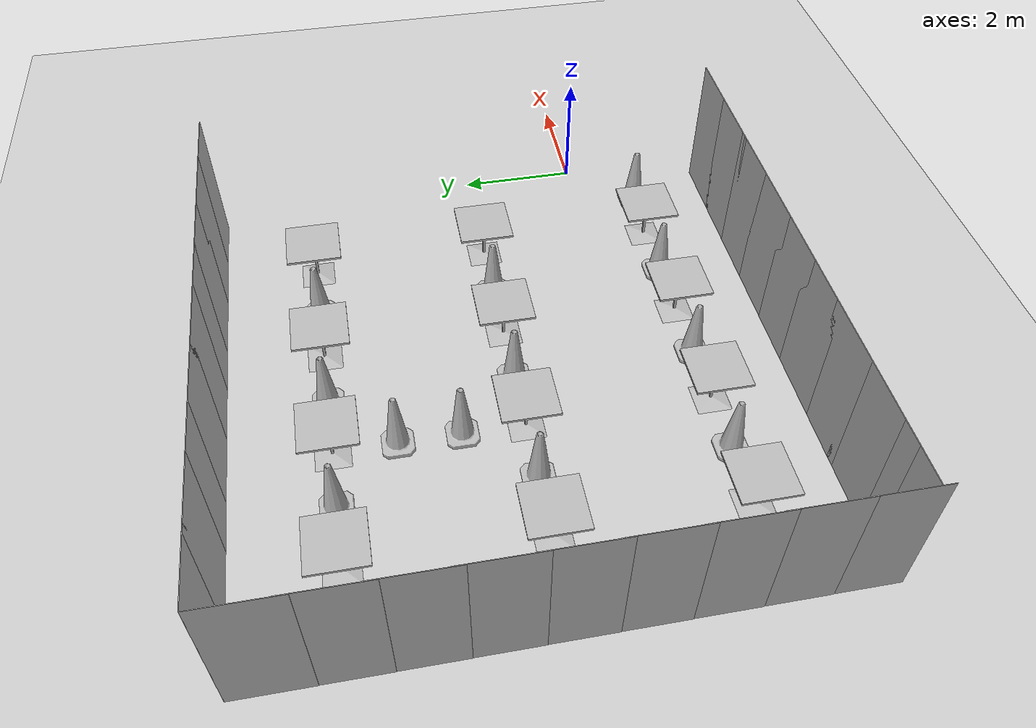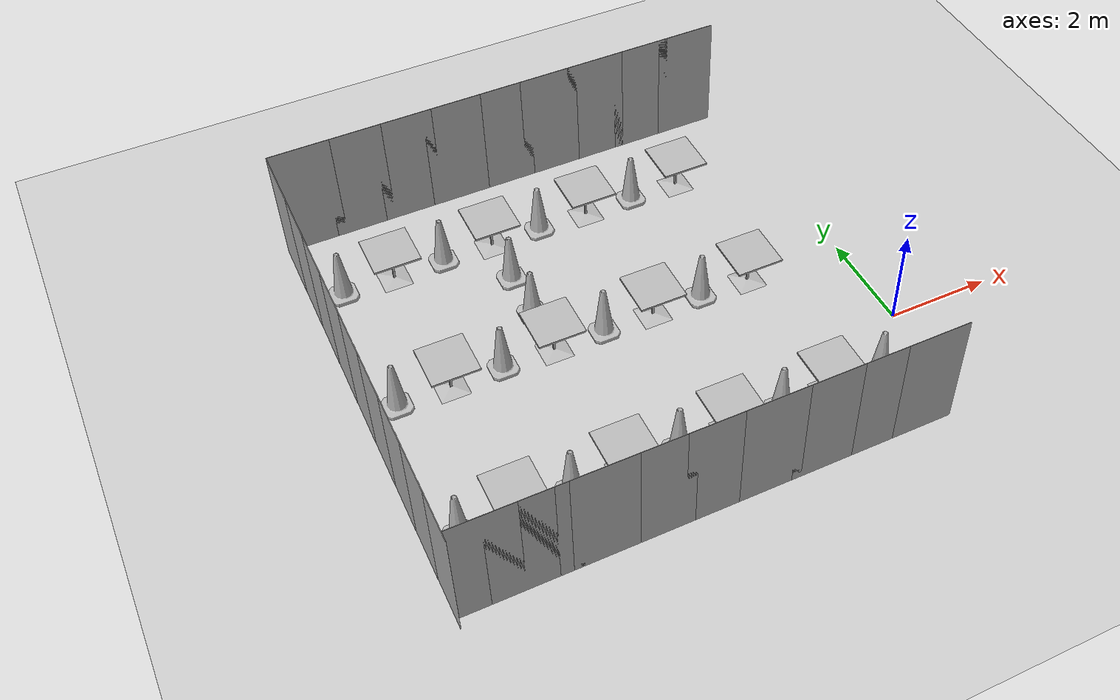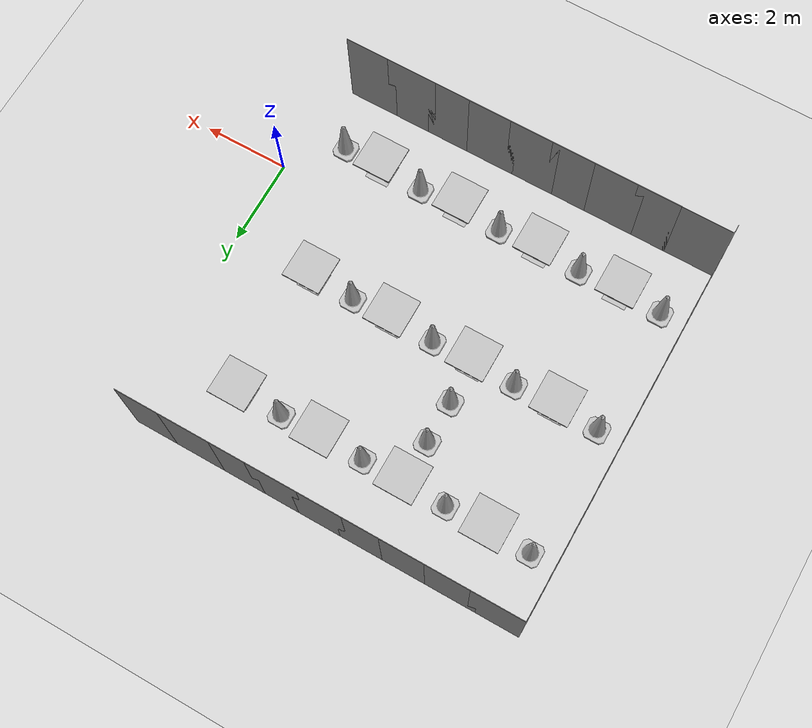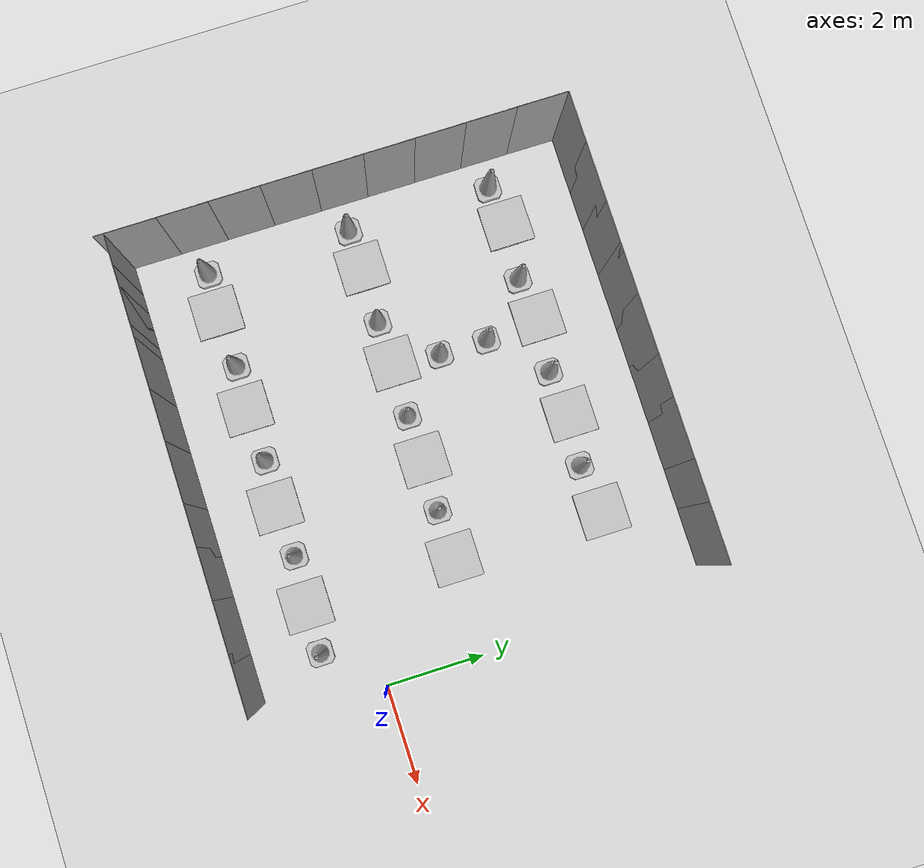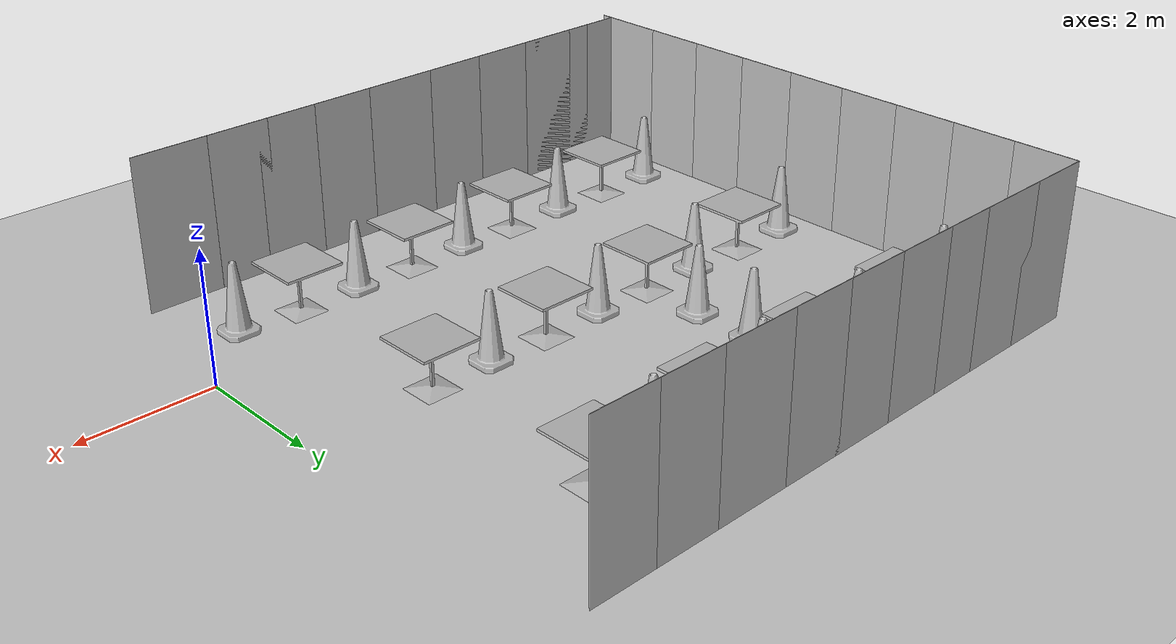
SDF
<sdf version="1.6">
 <world name="default">
  <model name="ground_plane">
   <static>1</static>
   <link name="link">
    <collision name="collision">
     <geometry><plane><normal>0 0 1</normal><size>100 100</size></plane></geometry>
     <surface>
      <contact><collide_bitmask>65535</collide_bitmask></contact>
      <friction><ode><mu>100</mu><mu2>50</mu2></ode></friction>
     </surface>
    </collision>
    <visual name="visual">
     <cast_shadows>0</cast_shadows>
     <geometry><plane><normal>0 0 1</normal><size>100 100</size></plane></geometry>
     <material>
      <script><uri>file://media/materials/scripts/gazebo.material</uri><name>Gazebo/Grey</name></script>
     </material>
    </visual>
   </link>
  </model>
  <model name="cafe_table">
   <static>1</static>
   <link name="link">
    <collision name="surface">
     <pose>0 0 0.755 0 -0 0</pose>
     <geometry><box><size>0.913 0.913 0.04</size></box></geometry>
    </collision>
    <collision name="column">
     <pose>0 0 0.37 0 -0 0</pose>
     <geometry><box><size>0.042 0.042 0.74</size></box></geometry>
    </collision>
    <collision name="base">
     <pose>0 0 0.02 0 -0 0</pose>
     <geometry><box><size>0.56 0.56 0.04</size></box></geometry>
    </collision>
    <visual name="visual">
     <geometry><mesh><uri>model://cafe_table/meshes/cafe_table.dae</uri></mesh></geometry>
    </visual>
   </link>
   <pose>-4 -1 0 0 -0 0</pose>
  </model>
  <model name="cafe_table_clone">
   <static>1</static>
   <link name="link">
    <collision name="surface">
     <pose>0 0 0.755 0 -0 0</pose>
     <geometry><box><size>0.913 0.913 0.04</size></box></geometry>
    </collision>
    <collision name="column">
     <pose>0 0 0.37 0 -0 0</pose>
     <geometry><box><size>0.042 0.042 0.74</size></box></geometry>
    </collision>
    <collision name="base">
     <pose>0 0 0.02 0 -0 0</pose>
     <geometry><box><size>0.56 0.56 0.04</size></box></geometry>
    </collision>
    <visual name="visual">
     <geometry><mesh><uri>model://cafe_table/meshes/cafe_table.dae</uri></mesh></geometry>
    </visual>
   </link>
   <pose>-2 -1 0 0 -0 0</pose>
  </model>
  <model name="cafe_table_clone_1">
   <static>1</static>
   <link name="link">
    <collision name="surface">
     <pose>0 0 0.755 0 -0 0</pose>
     <geometry><box><size>0.913 0.913 0.04</size></box></geometry>
    </collision>
    <collision name="column">
     <pose>0 0 0.37 0 -0 0</pose>
     <geometry><box><size>0.042 0.042 0.74</size></box></geometry>
    </collision>
    <collision name="base">
     <pose>0 0 0.02 0 -0 0</pose>
     <geometry><box><size>0.56 0.56 0.04</size></box></geometry>
    </collision>
    <visual name="visual">
     <geometry><mesh><uri>model://cafe_table/meshes/cafe_table.dae</uri></mesh></geometry>
    </visual>
   </link>
   <pose>-6 -1 0 0 -0 0</pose>
  </model>
  <model name="cafe_table_clone_2">
   <static>1</static>
   <link name="link">
    <collision name="surface">
     <pose>0 0 0.755 0 -0 0</pose>
     <geometry><box><size>0.913 0.913 0.04</size></box></geometry>
    </collision>
    <collision name="column">
     <pose>0 0 0.37 0 -0 0</pose>
     <geometry><box><size>0.042 0.042 0.74</size></box></geometry>
    </collision>
    <collision name="base">
     <pose>0 0 0.02 0 -0 0</pose>
     <geometry><box><size>0.56 0.56 0.04</size></box></geometry>
    </collision>
    <visual name="visual">
     <geometry><mesh><uri>model://cafe_table/meshes/cafe_table.dae</uri></mesh></geometry>
    </visual>
   </link>
   <pose>-8 -1 0 0 -0 0</pose>
  </model>
  <model name="cafe_table_clone_3">
   <static>1</static>
   <link name="link">
    <collision name="surface">
     <pose>0 0 0.755 0 -0 0</pose>
     <geometry><box><size>0.913 0.913 0.04</size></box></geometry>
    </collision>
    <collision name="column">
     <pose>0 0 0.37 0 -0 0</pose>
     <geometry><box><size>0.042 0.042 0.74</size></box></geometry>
    </collision>
    <collision name="base">
     <pose>0 0 0.02 0 -0 0</pose>
     <geometry><box><size>0.56 0.56 0.04</size></box></geometry>
    </collision>
    <visual name="visual">
     <geometry><mesh><uri>model://cafe_table/meshes/cafe_table.dae</uri></mesh></geometry>
    </visual>
   </link>
   <pose>-8 2 0 0 -0 0</pose>
  </model>
  <model name="cafe_table_clone_4">
   <static>1</static>
   <link name="link">
    <collision name="surface">
     <pose>0 0 0.755 0 -0 0</pose>
     <geometry><box><size>0.913 0.913 0.04</size></box></geometry>
    </collision>
    <collision name="column">
     <pose>0 0 0.37 0 -0 0</pose>
     <geometry><box><size>0.042 0.042 0.74</size></box></geometry>
    </collision>
    <collision name="base">
     <pose>0 0 0.02 0 -0 0</pose>
     <geometry><box><size>0.56 0.56 0.04</size></box></geometry>
    </collision>
    <visual name="visual">
     <geometry><mesh><uri>model://cafe_table/meshes/cafe_table.dae</uri></mesh></geometry>
    </visual>
   </link>
   <pose>-6 2 0 0 -0 0</pose>
  </model>
  <model name="cafe_table_clone_5">
   <static>1</static>
   <link name="link">
    <collision name="surface">
     <pose>0 0 0.755 0 -0 0</pose>
     <geometry><box><size>0.913 0.913 0.04</size></box></geometry>
    </collision>
    <collision name="column">
     <pose>0 0 0.37 0 -0 0</pose>
     <geometry><box><size>0.042 0.042 0.74</size></box></geometry>
    </collision>
    <collision name="base">
     <pose>0 0 0.02 0 -0 0</pose>
     <geometry><box><size>0.56 0.56 0.04</size></box></geometry>
    </collision>
    <visual name="visual">
     <geometry><mesh><uri>model://cafe_table/meshes/cafe_table.dae</uri></mesh></geometry>
    </visual>
   </link>
   <pose>-4 2 0 0 -0 0</pose>
  </model>
  <model name="cafe_table_clone_6">
   <static>1</static>
   <link name="link">
    <collision name="surface">
     <pose>0 0 0.755 0 -0 0</pose>
     <geometry><box><size>0.913 0.913 0.04</size></box></geometry>
    </collision>
    <collision name="column">
     <pose>0 0 0.37 0 -0 0</pose>
     <geometry><box><size>0.042 0.042 0.74</size></box></geometry>
    </collision>
    <collision name="base">
     <pose>0 0 0.02 0 -0 0</pose>
     <geometry><box><size>0.56 0.56 0.04</size></box></geometry>
    </collision>
    <visual name="visual">
     <geometry><mesh><uri>model://cafe_table/meshes/cafe_table.dae</uri></mesh></geometry>
    </visual>
   </link>
   <pose>-2 2 0 0 -0 0</pose>
  </model>
  <model name="cafe_table_clone_8">
   <static>1</static>
   <link name="link">
    <collision name="surface">
     <pose>0 0 0.755 0 -0 0</pose>
     <geometry><box><size>0.913 0.913 0.04</size></box></geometry>
    </collision>
    <collision name="column">
     <pose>0 0 0.37 0 -0 0</pose>
     <geometry><box><size>0.042 0.042 0.74</size></box></geometry>
    </collision>
    <collision name="base">
     <pose>0 0 0.02 0 -0 0</pose>
     <geometry><box><size>0.56 0.56 0.04</size></box></geometry>
    </collision>
    <visual name="visual">
     <geometry><mesh><uri>model://cafe_table/meshes/cafe_table.dae</uri></mesh></geometry>
    </visual>
   </link>
   <pose>-8 5 0 0 -0 0</pose>
  </model>
  <model name="cafe_table_clone_9">
   <static>1</static>
   <link name="link">
    <collision name="surface">
     <pose>0 0 0.755 0 -0 0</pose>
     <geometry><box><size>0.913 0.913 0.04</size></box></geometry>
    </collision>
    <collision name="column">
     <pose>0 0 0.37 0 -0 0</pose>
     <geometry><box><size>0.042 0.042 0.74</size></box></geometry>
    </collision>
    <collision name="base">
     <pose>0 0 0.02 0 -0 0</pose>
     <geometry><box><size>0.56 0.56 0.04</size></box></geometry>
    </collision>
    <visual name="visual">
     <geometry><mesh><uri>model://cafe_table/meshes/cafe_table.dae</uri></mesh></geometry>
    </visual>
   </link>
   <pose>-6 5 0 0 -0 0</pose>
  </model>
  <model name="cafe_table_clone_10">
   <static>1</static>
   <link name="link">
    <collision name="surface">
     <pose>0 0 0.755 0 -0 0</pose>
     <geometry><box><size>0.913 0.913 0.04</size></box></geometry>
    </collision>
    <collision name="column">
     <pose>0 0 0.37 0 -0 0</pose>
     <geometry><box><size>0.042 0.042 0.74</size></box></geometry>
    </collision>
    <collision name="base">
     <pose>0 0 0.02 0 -0 0</pose>
     <geometry><box><size>0.56 0.56 0.04</size></box></geometry>
    </collision>
    <visual name="visual">
     <geometry><mesh><uri>model://cafe_table/meshes/cafe_table.dae</uri></mesh></geometry>
    </visual>
   </link>
   <pose>-4 5 0 0 -0 0</pose>
  </model>
  <model name="cafe_table_clone_11">
   <static>1</static>
   <link name="link">
    <collision name="surface">
     <pose>0 0 0.755 0 -0 0</pose>
     <geometry><box><size>0.913 0.913 0.04</size></box></geometry>
    </collision>
    <collision name="column">
     <pose>0 0 0.37 0 -0 0</pose>
     <geometry><box><size>0.042 0.042 0.74</size></box></geometry>
    </collision>
    <collision name="base">
     <pose>0 0 0.02 0 -0 0</pose>
     <geometry><box><size>0.56 0.56 0.04</size></box></geometry>
    </collision>
    <visual name="visual">
     <geometry><mesh><uri>model://cafe_table/meshes/cafe_table.dae</uri></mesh></geometry>
    </visual>
   </link>
   <pose>-2 5 0 0 -0 0</pose>
  </model>
  <model name="nist_maze_wall_240_clone">
   <static>1</static>
   <link name="nist__maze_wall_240_link">
    <collision name="collision">
     <geometry>
      <mesh><uri>model://nist_maze_wall_240/meshes/nist_maze_wall_240.dae</uri><scale>1 1 1</scale></mesh>
     </geometry>
    </collision>
    <visual name="visual">
     <geometry>
      <mesh><uri>model://nist_maze_wall_240/meshes/nist_maze_wall_240.dae</uri><scale>1 1 1</scale></mesh>
     </geometry>
    </visual>
   </link>
   <pose>-1 -3 0 0 -0 0</pose>
  </model>
  <model name="nist_maze_wall_240_clone_0">
   <static>1</static>
   <link name="nist__maze_wall_240_link">
    <collision name="collision">
     <geometry>
      <mesh><uri>model://nist_maze_wall_240/meshes/nist_maze_wall_240.dae</uri><scale>1 1 1</scale></mesh>
     </geometry>
    </collision>
    <visual name="visual">
     <geometry>
      <mesh><uri>model://nist_maze_wall_240/meshes/nist_maze_wall_240.dae</uri><scale>1 1 1</scale></mesh>
     </geometry>
    </visual>
   </link>
   <pose>-2 -3 0 0 -0 0</pose>
  </model>
  <model name="nist_maze_wall_240_clone_1">
   <static>1</static>
   <link name="nist__maze_wall_240_link">
    <collision name="collision">
     <geometry>
      <mesh><uri>model://nist_maze_wall_240/meshes/nist_maze_wall_240.dae</uri><scale>1 1 1</scale></mesh>
     </geometry>
    </collision>
    <visual name="visual">
     <geometry>
      <mesh><uri>model://nist_maze_wall_240/meshes/nist_maze_wall_240.dae</uri><scale>1 1 1</scale></mesh>
     </geometry>
    </visual>
   </link>
   <pose>-3 -3 0 0 -0 0</pose>
  </model>
  <model name="nist_maze_wall_240_clone_2">
   <static>1</static>
   <link name="nist__maze_wall_240_link">
    <collision name="collision">
     <geometry>
      <mesh><uri>model://nist_maze_wall_240/meshes/nist_maze_wall_240.dae</uri><scale>1 1 1</scale></mesh>
     </geometry>
    </collision>
    <visual name="visual">
     <geometry>
      <mesh><uri>model://nist_maze_wall_240/meshes/nist_maze_wall_240.dae</uri><scale>1 1 1</scale></mesh>
     </geometry>
    </visual>
   </link>
   <pose>-4 -3 0 0 -0 0</pose>
  </model>
  <model name="nist_maze_wall_240_clone_3">
   <static>1</static>
   <link name="nist__maze_wall_240_link">
    <collision name="collision">
     <geometry>
      <mesh><uri>model://nist_maze_wall_240/meshes/nist_maze_wall_240.dae</uri><scale>1 1 1</scale></mesh>
     </geometry>
    </collision>
    <visual name="visual">
     <geometry>
      <mesh><uri>model://nist_maze_wall_240/meshes/nist_maze_wall_240.dae</uri><scale>1 1 1</scale></mesh>
     </geometry>
    </visual>
   </link>
   <pose>-5 -3 0 0 -0 0</pose>
  </model>
  <model name="nist_maze_wall_240_clone_4">
   <static>1</static>
   <link name="nist__maze_wall_240_link">
    <collision name="collision">
     <geometry>
      <mesh><uri>model://nist_maze_wall_240/meshes/nist_maze_wall_240.dae</uri><scale>1 1 1</scale></mesh>
     </geometry>
    </collision>
    <visual name="visual">
     <geometry>
      <mesh><uri>model://nist_maze_wall_240/meshes/nist_maze_wall_240.dae</uri><scale>1 1 1</scale></mesh>
     </geometry>
    </visual>
   </link>
   <pose>-6 -3 0 0 -0 0</pose>
  </model>
  <model name="nist_maze_wall_240_clone_5">
   <static>1</static>
   <link name="nist__maze_wall_240_link">
    <collision name="collision">
     <geometry>
      <mesh><uri>model://nist_maze_wall_240/meshes/nist_maze_wall_240.dae</uri><scale>1 1 1</scale></mesh>
     </geometry>
    </collision>
    <visual name="visual">
     <geometry>
      <mesh><uri>model://nist_maze_wall_240/meshes/nist_maze_wall_240.dae</uri><scale>1 1 1</scale></mesh>
     </geometry>
    </visual>
   </link>
   <pose>-7 -3 0 0 -0 0</pose>
  </model>
  <model name="nist_maze_wall_240_clone_6">
   <static>1</static>
   <link name="nist__maze_wall_240_link">
    <collision name="collision">
     <geometry>
      <mesh><uri>model://nist_maze_wall_240/meshes/nist_maze_wall_240.dae</uri><scale>1 1 1</scale></mesh>
     </geometry>
    </collision>
    <visual name="visual">
     <geometry>
      <mesh><uri>model://nist_maze_wall_240/meshes/nist_maze_wall_240.dae</uri><scale>1 1 1</scale></mesh>
     </geometry>
    </visual>
   </link>
   <pose>-8.41484 -3 0 0 -0 0</pose>
  </model>
  <model name="nist_maze_wall_240_clone_7">
   <static>1</static>
   <link name="nist__maze_wall_240_link">
    <collision name="collision">
     <geometry>
      <mesh><uri>model://nist_maze_wall_240/meshes/nist_maze_wall_240.dae</uri><scale>1 1 1</scale></mesh>
     </geometry>
    </collision>
    <visual name="visual">
     <geometry>
      <mesh><uri>model://nist_maze_wall_240/meshes/nist_maze_wall_240.dae</uri><scale>1 1 1</scale></mesh>
     </geometry>
    </visual>
   </link>
   <pose>-8 -3 0 0 -0 0</pose>
  </model>
  <model name="nist_maze_wall_240_clone_8">
   <static>1</static>
   <link name="nist__maze_wall_240_link">
    <collision name="collision">
     <geometry>
      <mesh><uri>model://nist_maze_wall_240/meshes/nist_maze_wall_240.dae</uri><scale>1 1 1</scale></mesh>
     </geometry>
    </collision>
    <visual name="visual">
     <geometry>
      <mesh><uri>model://nist_maze_wall_240/meshes/nist_maze_wall_240.dae</uri><scale>1 1 1</scale></mesh>
     </geometry>
    </visual>
   </link>
   <pose>-9 -3 0 0 -0 0</pose>
  </model>
  <model name="nist_maze_wall_240_clone_9_clone">
   <static>1</static>
   <link name="nist__maze_wall_240_link">
    <collision name="collision">
     <geometry>
      <mesh><uri>model://nist_maze_wall_240/meshes/nist_maze_wall_240.dae</uri><scale>1 1 1</scale></mesh>
     </geometry>
    </collision>
    <visual name="visual">
     <geometry>
      <mesh><uri>model://nist_maze_wall_240/meshes/nist_maze_wall_240.dae</uri><scale>1 1 1</scale></mesh>
     </geometry>
    </visual>
   </link>
   <pose>-9 -2 0 0 -0 1.56666</pose>
  </model>
  <model name="nist_maze_wall_240_clone_9_clone_0">
   <static>1</static>
   <link name="nist__maze_wall_240_link">
    <collision name="collision">
     <geometry>
      <mesh><uri>model://nist_maze_wall_240/meshes/nist_maze_wall_240.dae</uri><scale>1 1 1</scale></mesh>
     </geometry>
    </collision>
    <visual name="visual">
     <geometry>
      <mesh><uri>model://nist_maze_wall_240/meshes/nist_maze_wall_240.dae</uri><scale>1 1 1</scale></mesh>
     </geometry>
    </visual>
   </link>
   <pose>-9 -1 0 0 -0 1.56666</pose>
  </model>
  <model name="nist_maze_wall_240_clone_9_clone_1">
   <static>1</static>
   <link name="nist__maze_wall_240_link">
    <collision name="collision">
     <geometry>
      <mesh><uri>model://nist_maze_wall_240/meshes/nist_maze_wall_240.dae</uri><scale>1 1 1</scale></mesh>
     </geometry>
    </collision>
    <visual name="visual">
     <geometry>
      <mesh><uri>model://nist_maze_wall_240/meshes/nist_maze_wall_240.dae</uri><scale>1 1 1</scale></mesh>
     </geometry>
    </visual>
   </link>
   <pose>-9 0 0 0 -0 1.56666</pose>
  </model>
  <model name="nist_maze_wall_240_clone_9_clone_2">
   <static>1</static>
   <link name="nist__maze_wall_240_link">
    <collision name="collision">
     <geometry>
      <mesh><uri>model://nist_maze_wall_240/meshes/nist_maze_wall_240.dae</uri><scale>1 1 1</scale></mesh>
     </geometry>
    </collision>
    <visual name="visual">
     <geometry>
      <mesh><uri>model://nist_maze_wall_240/meshes/nist_maze_wall_240.dae</uri><scale>1 1 1</scale></mesh>
     </geometry>
    </visual>
   </link>
   <pose>-9 1 0 0 -0 1.56666</pose>
  </model>
  <model name="nist_maze_wall_240_clone_9_clone_3">
   <static>1</static>
   <link name="nist__maze_wall_240_link">
    <collision name="collision">
     <geometry>
      <mesh><uri>model://nist_maze_wall_240/meshes/nist_maze_wall_240.dae</uri><scale>1 1 1</scale></mesh>
     </geometry>
    </collision>
    <visual name="visual">
     <geometry>
      <mesh><uri>model://nist_maze_wall_240/meshes/nist_maze_wall_240.dae</uri><scale>1 1 1</scale></mesh>
     </geometry>
    </visual>
   </link>
   <pose>-9 2 0 0 -0 1.56666</pose>
  </model>
  <model name="nist_maze_wall_240_clone_9_clone_4">
   <static>1</static>
   <link name="nist__maze_wall_240_link">
    <collision name="collision">
     <geometry>
      <mesh><uri>model://nist_maze_wall_240/meshes/nist_maze_wall_240.dae</uri><scale>1 1 1</scale></mesh>
     </geometry>
    </collision>
    <visual name="visual">
     <geometry>
      <mesh><uri>model://nist_maze_wall_240/meshes/nist_maze_wall_240.dae</uri><scale>1 1 1</scale></mesh>
     </geometry>
    </visual>
   </link>
   <pose>-9 3 0 0 -0 1.56666</pose>
  </model>
  <model name="nist_maze_wall_240_clone_9_clone_5">
   <static>1</static>
   <link name="nist__maze_wall_240_link">
    <collision name="collision">
     <geometry>
      <mesh><uri>model://nist_maze_wall_240/meshes/nist_maze_wall_240.dae</uri><scale>1 1 1</scale></mesh>
     </geometry>
    </collision>
    <visual name="visual">
     <geometry>
      <mesh><uri>model://nist_maze_wall_240/meshes/nist_maze_wall_240.dae</uri><scale>1 1 1</scale></mesh>
     </geometry>
    </visual>
   </link>
   <pose>-9 4 0 0 -0 1.56666</pose>
  </model>
  <model name="nist_maze_wall_240_clone_9_clone_6">
   <static>1</static>
   <link name="nist__maze_wall_240_link">
    <collision name="collision">
     <geometry>
      <mesh><uri>model://nist_maze_wall_240/meshes/nist_maze_wall_240.dae</uri><scale>1 1 1</scale></mesh>
     </geometry>
    </collision>
    <visual name="visual">
     <geometry>
      <mesh><uri>model://nist_maze_wall_240/meshes/nist_maze_wall_240.dae</uri><scale>1 1 1</scale></mesh>
     </geometry>
    </visual>
   </link>
   <pose>-9 5 0 0 -0 1.56666</pose>
  </model>
  <model name="nist_maze_wall_240_clone_9_clone_7">
   <static>1</static>
   <link name="nist__maze_wall_240_link">
    <collision name="collision">
     <geometry>
      <mesh><uri>model://nist_maze_wall_240/meshes/nist_maze_wall_240.dae</uri><scale>1 1 1</scale></mesh>
     </geometry>
    </collision>
    <visual name="visual">
     <geometry>
      <mesh><uri>model://nist_maze_wall_240/meshes/nist_maze_wall_240.dae</uri><scale>1 1 1</scale></mesh>
     </geometry>
    </visual>
   </link>
   <pose>-9 6 0 0 -0 1.56666</pose>
  </model>
  <model name="nist_maze_wall_240_clone_8_clone">
   <static>1</static>
   <link name="nist__maze_wall_240_link">
    <collision name="collision">
     <geometry>
      <mesh><uri>model://nist_maze_wall_240/meshes/nist_maze_wall_240.dae</uri><scale>1 1 1</scale></mesh>
     </geometry>
    </collision>
    <visual name="visual">
     <geometry>
      <mesh><uri>model://nist_maze_wall_240/meshes/nist_maze_wall_240.dae</uri><scale>1 1 1</scale></mesh>
     </geometry>
    </visual>
   </link>
   <pose>-9 6 0 0 -0 0</pose>
  </model>
  <model name="nist_maze_wall_240_clone_8_clone_0">
   <static>1</static>
   <link name="nist__maze_wall_240_link">
    <collision name="collision">
     <geometry>
      <mesh><uri>model://nist_maze_wall_240/meshes/nist_maze_wall_240.dae</uri><scale>1 1 1</scale></mesh>
     </geometry>
    </collision>
    <visual name="visual">
     <geometry>
      <mesh><uri>model://nist_maze_wall_240/meshes/nist_maze_wall_240.dae</uri><scale>1 1 1</scale></mesh>
     </geometry>
    </visual>
   </link>
   <pose>-8 6 0 0 -0 0</pose>
  </model>
  <model name="nist_maze_wall_240_clone_8_clone_1">
   <static>1</static>
   <link name="nist__maze_wall_240_link">
    <collision name="collision">
     <geometry>
      <mesh><uri>model://nist_maze_wall_240/meshes/nist_maze_wall_240.dae</uri><scale>1 1 1</scale></mesh>
     </geometry>
    </collision>
    <visual name="visual">
     <geometry>
      <mesh><uri>model://nist_maze_wall_240/meshes/nist_maze_wall_240.dae</uri><scale>1 1 1</scale></mesh>
     </geometry>
    </visual>
   </link>
   <pose>-7 6 0 0 -0 0</pose>
  </model>
  <model name="nist_maze_wall_240_clone_8_clone_2">
   <static>1</static>
   <link name="nist__maze_wall_240_link">
    <collision name="collision">
     <geometry>
      <mesh><uri>model://nist_maze_wall_240/meshes/nist_maze_wall_240.dae</uri><scale>1 1 1</scale></mesh>
     </geometry>
    </collision>
    <visual name="visual">
     <geometry>
      <mesh><uri>model://nist_maze_wall_240/meshes/nist_maze_wall_240.dae</uri><scale>1 1 1</scale></mesh>
     </geometry>
    </visual>
   </link>
   <pose>-6 6 0 0 -0 0</pose>
  </model>
  <model name="nist_maze_wall_240_clone_8_clone_3">
   <static>1</static>
   <link name="nist__maze_wall_240_link">
    <collision name="collision">
     <geometry>
      <mesh><uri>model://nist_maze_wall_240/meshes/nist_maze_wall_240.dae</uri><scale>1 1 1</scale></mesh>
     </geometry>
    </collision>
    <visual name="visual">
     <geometry>
      <mesh><uri>model://nist_maze_wall_240/meshes/nist_maze_wall_240.dae</uri><scale>1 1 1</scale></mesh>
     </geometry>
    </visual>
   </link>
   <pose>-5 6 0 0 -0 0</pose>
  </model>
  <model name="nist_maze_wall_240_clone_8_clone_4">
   <static>1</static>
   <link name="nist__maze_wall_240_link">
    <collision name="collision">
     <geometry>
      <mesh><uri>model://nist_maze_wall_240/meshes/nist_maze_wall_240.dae</uri><scale>1 1 1</scale></mesh>
     </geometry>
    </collision>
    <visual name="visual">
     <geometry>
      <mesh><uri>model://nist_maze_wall_240/meshes/nist_maze_wall_240.dae</uri><scale>1 1 1</scale></mesh>
     </geometry>
    </visual>
   </link>
   <pose>-4 6 0 0 -0 0</pose>
  </model>
  <model name="nist_maze_wall_240_clone_8_clone_5">
   <static>1</static>
   <link name="nist__maze_wall_240_link">
    <collision name="collision">
     <geometry>
      <mesh><uri>model://nist_maze_wall_240/meshes/nist_maze_wall_240.dae</uri><scale>1 1 1</scale></mesh>
     </geometry>
    </collision>
    <visual name="visual">
     <geometry>
      <mesh><uri>model://nist_maze_wall_240/meshes/nist_maze_wall_240.dae</uri><scale>1 1 1</scale></mesh>
     </geometry>
    </visual>
   </link>
   <pose>-3 6 0 0 -0 0</pose>
  </model>
  <model name="nist_maze_wall_240_clone_8_clone_6">
   <static>1</static>
   <link name="nist__maze_wall_240_link">
    <collision name="collision">
     <geometry>
      <mesh><uri>model://nist_maze_wall_240/meshes/nist_maze_wall_240.dae</uri><scale>1 1 1</scale></mesh>
     </geometry>
    </collision>
    <visual name="visual">
     <geometry>
      <mesh><uri>model://nist_maze_wall_240/meshes/nist_maze_wall_240.dae</uri><scale>1 1 1</scale></mesh>
     </geometry>
    </visual>
   </link>
   <pose>-2 6 0 0 -0 0</pose>
  </model>
  <model name="nist_maze_wall_240_clone_8_clone_7">
   <static>1</static>
   <link name="nist__maze_wall_240_link">
    <collision name="collision">
     <geometry>
      <mesh><uri>model://nist_maze_wall_240/meshes/nist_maze_wall_240.dae</uri><scale>1 1 1</scale></mesh>
     </geometry>
    </collision>
    <visual name="visual">
     <geometry>
      <mesh><uri>model://nist_maze_wall_240/meshes/nist_maze_wall_240.dae</uri><scale>1 1 1</scale></mesh>
     </geometry>
    </visual>
   </link>
   <pose>-1 6 0 0 -0 0</pose>
  </model>
  <model name="Construction Cone">
   <link name="link">
    <collision name="collision">
     <geometry>
      <mesh><scale>10 10 10</scale><uri>model://construction_cone/meshes/construction_cone.dae</uri></mesh>
     </geometry>
    </collision>
    <visual name="visual">
     <geometry>
      <mesh><scale>10 10 10</scale><uri>model://construction_cone/meshes/construction_cone.dae</uri></mesh>
     </geometry>
    </visual>
    <inertial>
     <inertia><ixx>1</ixx><ixy>0</ixy><ixz>0</ixz><iyy>1</iyy><iyz>0</iyz><izz>1</izz></inertia>
     <mass>1</mass>
    </inertial>
   </link>
   <pose>-1.01451 -1.06415 -0 0 -0 0</pose>
  </model>
  <model name="Construction Cone_clone">
   <link name="link">
    <collision name="collision">
     <geometry>
      <mesh><scale>10 10 10</scale><uri>model://construction_cone/meshes/construction_cone.dae</uri></mesh>
     </geometry>
    </collision>
    <visual name="visual">
     <geometry>
      <mesh><scale>10 10 10</scale><uri>model://construction_cone/meshes/construction_cone.dae</uri></mesh>
     </geometry>
    </visual>
    <inertial>
     <inertia><ixx>1</ixx><ixy>0</ixy><ixz>0</ixz><iyy>1</iyy><iyz>0</iyz><izz>1</izz></inertia>
     <mass>1</mass>
    </inertial>
   </link>
   <pose>-3 -1 -0 0 -0 0</pose>
  </model>
  <model name="Construction Cone_clone_0">
   <link name="link">
    <collision name="collision">
     <geometry>
      <mesh><scale>10 10 10</scale><uri>model://construction_cone/meshes/construction_cone.dae</uri></mesh>
     </geometry>
    </collision>
    <visual name="visual">
     <geometry>
      <mesh><scale>10 10 10</scale><uri>model://construction_cone/meshes/construction_cone.dae</uri></mesh>
     </geometry>
    </visual>
    <inertial>
     <inertia><ixx>1</ixx><ixy>0</ixy><ixz>0</ixz><iyy>1</iyy><iyz>0</iyz><izz>1</izz></inertia>
     <mass>1</mass>
    </inertial>
   </link>
   <pose>-5 -1 -0 0 -0 0</pose>
  </model>
  <model name="Construction Cone_clone_1">
   <link name="link">
    <collision name="collision">
     <geometry>
      <mesh><scale>10 10 10</scale><uri>model://construction_cone/meshes/construction_cone.dae</uri></mesh>
     </geometry>
    </collision>
    <visual name="visual">
     <geometry>
      <mesh><scale>10 10 10</scale><uri>model://construction_cone/meshes/construction_cone.dae</uri></mesh>
     </geometry>
    </visual>
    <inertial>
     <inertia><ixx>1</ixx><ixy>0</ixy><ixz>0</ixz><iyy>1</iyy><iyz>0</iyz><izz>1</izz></inertia>
     <mass>1</mass>
    </inertial>
   </link>
   <pose>-7 -1 -0 0 -1e-06 0</pose>
  </model>
  <model name="Construction Cone_clone_2">
   <link name="link">
    <collision name="collision">
     <geometry>
      <mesh><scale>10 10 10</scale><uri>model://construction_cone/meshes/construction_cone.dae</uri></mesh>
     </geometry>
    </collision>
    <visual name="visual">
     <geometry>
      <mesh><scale>10 10 10</scale><uri>model://construction_cone/meshes/construction_cone.dae</uri></mesh>
     </geometry>
    </visual>
    <inertial>
     <inertia><ixx>1</ixx><ixy>0</ixy><ixz>0</ixz><iyy>1</iyy><iyz>0</iyz><izz>1</izz></inertia>
     <mass>1</mass>
    </inertial>
   </link>
   <pose>-7 2 -0 -0 -0 -0</pose>
  </model>
  <model name="Construction Cone_clone_3">
   <link name="link">
    <collision name="collision">
     <geometry>
      <mesh><scale>10 10 10</scale><uri>model://construction_cone/meshes/construction_cone.dae</uri></mesh>
     </geometry>
    </collision>
    <visual name="visual">
     <geometry>
      <mesh><scale>10 10 10</scale><uri>model://construction_cone/meshes/construction_cone.dae</uri></mesh>
     </geometry>
    </visual>
    <inertial>
     <inertia><ixx>1</ixx><ixy>0</ixy><ixz>0</ixz><iyy>1</iyy><iyz>0</iyz><izz>1</izz></inertia>
     <mass>1</mass>
    </inertial>
   </link>
   <pose>-5 2 -0 0 -1e-06 0</pose>
  </model>
  <model name="Construction Cone_clone_4">
   <link name="link">
    <collision name="collision">
     <geometry>
      <mesh><scale>10 10 10</scale><uri>model://construction_cone/meshes/construction_cone.dae</uri></mesh>
     </geometry>
    </collision>
    <visual name="visual">
     <geometry>
      <mesh><scale>10 10 10</scale><uri>model://construction_cone/meshes/construction_cone.dae</uri></mesh>
     </geometry>
    </visual>
    <inertial>
     <inertia><ixx>1</ixx><ixy>0</ixy><ixz>0</ixz><iyy>1</iyy><iyz>0</iyz><izz>1</izz></inertia>
     <mass>1</mass>
    </inertial>
   </link>
   <pose>-3 2 -0 0 -0 0</pose>
  </model>
  <model name="Construction Cone_clone_7">
   <link name="link">
    <collision name="collision">
     <geometry>
      <mesh><scale>10 10 10</scale><uri>model://construction_cone/meshes/construction_cone.dae</uri></mesh>
     </geometry>
    </collision>
    <visual name="visual">
     <geometry>
      <mesh><scale>10 10 10</scale><uri>model://construction_cone/meshes/construction_cone.dae</uri></mesh>
     </geometry>
    </visual>
    <inertial>
     <inertia><ixx>1</ixx><ixy>0</ixy><ixz>0</ixz><iyy>1</iyy><iyz>0</iyz><izz>1</izz></inertia>
     <mass>1</mass>
    </inertial>
   </link>
   <pose>-3 5 -0 0 -1e-06 0</pose>
  </model>
  <model name="Construction Cone_clone_8">
   <link name="link">
    <collision name="collision">
     <geometry>
      <mesh><scale>10 10 10</scale><uri>model://construction_cone/meshes/construction_cone.dae</uri></mesh>
     </geometry>
    </collision>
    <visual name="visual">
     <geometry>
      <mesh><scale>10 10 10</scale><uri>model://construction_cone/meshes/construction_cone.dae</uri></mesh>
     </geometry>
    </visual>
    <inertial>
     <inertia><ixx>1</ixx><ixy>0</ixy><ixz>0</ixz><iyy>1</iyy><iyz>0</iyz><izz>1</izz></inertia>
     <mass>1</mass>
    </inertial>
   </link>
   <pose>-5 5 -0 0 -0 0</pose>
  </model>
  <model name="Construction Cone_clone_9">
   <link name="link">
    <collision name="collision">
     <geometry>
      <mesh><scale>10 10 10</scale><uri>model://construction_cone/meshes/construction_cone.dae</uri></mesh>
     </geometry>
    </collision>
    <visual name="visual">
     <geometry>
      <mesh><scale>10 10 10</scale><uri>model://construction_cone/meshes/construction_cone.dae</uri></mesh>
     </geometry>
    </visual>
    <inertial>
     <inertia><ixx>1</ixx><ixy>0</ixy><ixz>0</ixz><iyy>1</iyy><iyz>0</iyz><izz>1</izz></inertia>
     <mass>1</mass>
    </inertial>
   </link>
   <pose>-7 5 -0 0 -0 0</pose>
  </model>
  <model name="Construction Cone_clone_10">
   <link name="link">
    <collision name="collision">
     <geometry>
      <mesh><scale>10 10 10</scale><uri>model://construction_cone/meshes/construction_cone.dae</uri></mesh>
     </geometry>
    </collision>
    <visual name="visual">
     <geometry>
      <mesh><scale>10 10 10</scale><uri>model://construction_cone/meshes/construction_cone.dae</uri></mesh>
     </geometry>
    </visual>
    <inertial>
     <inertia><ixx>1</ixx><ixy>0</ixy><ixz>0</ixz><iyy>1</iyy><iyz>0</iyz><izz>1</izz></inertia>
     <mass>1</mass>
    </inertial>
   </link>
   <pose>-6 3 -0 0 -0 0</pose>
  </model>
  <model name="Construction Cone_clone_11">
   <link name="link">
    <collision name="collision">
     <geometry>
      <mesh><scale>10 10 10</scale><uri>model://construction_cone/meshes/construction_cone.dae</uri></mesh>
     </geometry>
    </collision>
    <visual name="visual">
     <geometry>
      <mesh><scale>10 10 10</scale><uri>model://construction_cone/meshes/construction_cone.dae</uri></mesh>
     </geometry>
    </visual>
    <inertial>
     <inertia><ixx>1</ixx><ixy>0</ixy><ixz>0</ixz><iyy>1</iyy><iyz>0</iyz><izz>1</izz></inertia>
     <mass>1</mass>
    </inertial>
   </link>
   <pose>-6 4 -1e-05 -0 -0 -0</pose>
  </model>
  <model name="Construction Cone_clone_15">
   <link name="link">
    <collision name="collision">
     <geometry>
      <mesh><scale>10 10 10</scale><uri>model://construction_cone/meshes/construction_cone.dae</uri></mesh>
     </geometry>
    </collision>
    <visual name="visual">
     <geometry>
      <mesh><scale>10 10 10</scale><uri>model://construction_cone/meshes/construction_cone.dae</uri></mesh>
     </geometry>
    </visual>
    <inertial>
     <inertia><ixx>1</ixx><ixy>0</ixy><ixz>0</ixz><iyy>1</iyy><iyz>0</iyz><izz>1</izz></inertia>
     <mass>1</mass>
    </inertial>
   </link>
   <pose>-9 5 -0 0 -0 0</pose>
  </model>
  <model name="Construction Cone_clone_16">
   <link name="link">
    <collision name="collision">
     <geometry>
      <mesh><scale>10 10 10</scale><uri>model://construction_cone/meshes/construction_cone.dae</uri></mesh>
     </geometry>
    </collision>
    <visual name="visual">
     <geometry>
      <mesh><scale>10 10 10</scale><uri>model://construction_cone/meshes/construction_cone.dae</uri></mesh>
     </geometry>
    </visual>
    <inertial>
     <inertia><ixx>1</ixx><ixy>0</ixy><ixz>0</ixz><iyy>1</iyy><iyz>0</iyz><izz>1</izz></inertia>
     <mass>1</mass>
    </inertial>
   </link>
   <pose>-9 2 -0 0 -0 0</pose>
  </model>
  <model name="Construction Cone_clone_17">
   <link name="link">
    <collision name="collision">
     <geometry>
      <mesh><scale>10 10 10</scale><uri>model://construction_cone/meshes/construction_cone.dae</uri></mesh>
     </geometry>
    </collision>
    <visual name="visual">
     <geometry>
      <mesh><scale>10 10 10</scale><uri>model://construction_cone/meshes/construction_cone.dae</uri></mesh>
     </geometry>
    </visual>
    <inertial>
     <inertia><ixx>1</ixx><ixy>0</ixy><ixz>0</ixz><iyy>1</iyy><iyz>0</iyz><izz>1</izz></inertia>
     <mass>1</mass>
    </inertial>
   </link>
   <pose>-9 -1 -0 0 -0 0</pose>
  </model>
 </world>
</sdf>
